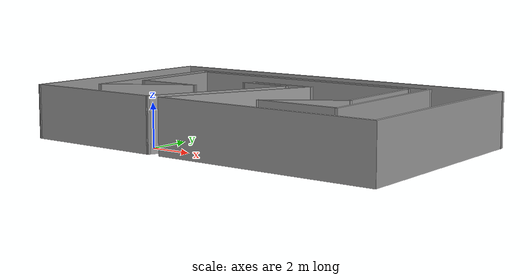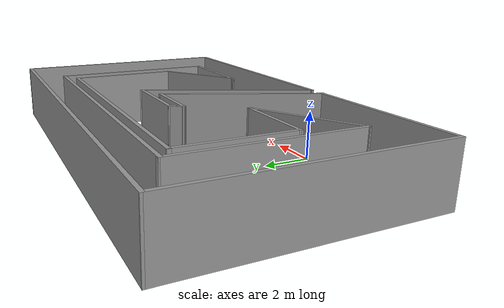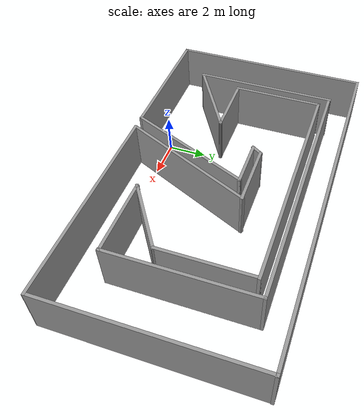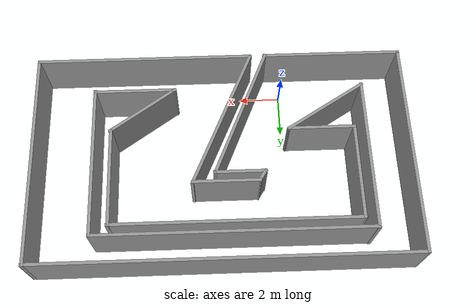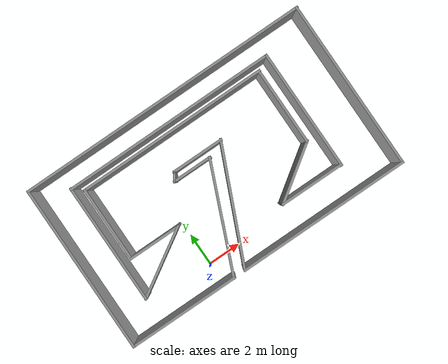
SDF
<?xml version='1.0'?>
<sdf version='1.7'>
  <model name='exam_world'>
    <pose>3.06633 3.94841 0 0 -0 0</pose>
    <link name='Wall_0'>
      <collision name='Wall_0_Collision'>
        <geometry>
          <box>
            <size>10.6064 0.15 2.5</size>
          </box>
        </geometry>
        <pose>0 0 1.25 0 -0 0</pose>
      </collision>
      <visual name='Wall_0_Visual'>
        <pose>0 0 1.25 0 -0 0</pose>
        <geometry>
          <box>
            <size>10.6064 0.15 2.5</size>
          </box>
        </geometry>
        <material>
          <script>
            <uri>file://media/materials/scripts/gazebo.material</uri>
            <name>Gazebo/Grey</name>
          </script>
          <ambient>1 1 1 1</ambient>
        </material>
        <meta>
          <layer>0</layer>
        </meta>
      </visual>
      <pose>3.6836 -5.1238 0 0 -0 0</pose>
    </link>
    <link name='Wall_10'>
      <collision name='Wall_10_Collision'>
        <geometry>
          <box>
            <size>3.25 0.15 2.5</size>
          </box>
        </geometry>
        <pose>0 0 1.25 0 -0 0</pose>
      </collision>
      <visual name='Wall_10_Visual'>
        <pose>0 0 1.25 0 -0 0</pose>
        <geometry>
          <box>
            <size>3.25 0.15 2.5</size>
          </box>
        </geometry>
        <material>
          <script>
            <uri>file://media/materials/scripts/gazebo.material</uri>
            <name>Gazebo/Grey</name>
          </script>
          <ambient>1 1 1 1</ambient>
        </material>
        <meta>
          <layer>0</layer>
        </meta>
      </visual>
      <pose>-0.144455 1.52165 0 0 -0 0</pose>
    </link>
    <link name='Wall_11'>
      <collision name='Wall_11_Collision'>
        <geometry>
          <box>
            <size>7.42086 0.15 2.5</size>
          </box>
        </geometry>
        <pose>0 0 1.25 0 -0 0</pose>
      </collision>
      <visual name='Wall_11_Visual'>
        <pose>0 0 1.25 0 -0 0</pose>
        <geometry>
          <box>
            <size>7.42086 0.15 2.5</size>
          </box>
        </geometry>
        <material>
          <script>
            <uri>file://media/materials/scripts/gazebo.material</uri>
            <name>Gazebo/Grey</name>
          </script>
          <ambient>1 1 1 1</ambient>
        </material>
        <meta>
          <layer>0</layer>
        </meta>
      </visual>
      <pose>-0.06953 -1.77447 0 0 -0 -1.98859</pose>
    </link>
    <link name='Wall_13'>
      <collision name='Wall_13_Collision'>
        <geometry>
          <box>
            <size>4 0.15 2.5</size>
          </box>
        </geometry>
        <pose>0 0 1.25 0 -0 0</pose>
      </collision>
      <visual name='Wall_13_Visual'>
        <pose>0 0 1.25 0 -0 0</pose>
        <geometry>
          <box>
            <size>4 0.15 2.5</size>
          </box>
        </geometry>
        <material>
          <script>
            <uri>file://media/materials/scripts/gazebo.material</uri>
            <name>Gazebo/Grey</name>
          </script>
          <ambient>1 1 1 1</ambient>
        </material>
        <meta>
          <layer>0</layer>
        </meta>
      </visual>
      <pose>4.14434 -3.31958 0 0 -0 0</pose>
    </link>
    <link name='Wall_14'>
      <collision name='Wall_14_Collision'>
        <geometry>
          <box>
            <size>7.3936 0.15 2.5</size>
          </box>
        </geometry>
        <pose>0 0 1.25 0 -0 0</pose>
      </collision>
      <visual name='Wall_14_Visual'>
        <pose>0 0 1.25 0 -0 0</pose>
        <geometry>
          <box>
            <size>7.3936 0.15 2.5</size>
          </box>
        </geometry>
        <material>
          <script>
            <uri>file://media/materials/scripts/gazebo.material</uri>
            <name>Gazebo/Grey</name>
          </script>
          <ambient>1 1 1 1</ambient>
        </material>
        <meta>
          <layer>0</layer>
        </meta>
      </visual>
      <pose>6.06934 0.275617 0 0 -0 1.5708</pose>
    </link>
    <link name='Wall_15'>
      <collision name='Wall_15_Collision'>
        <geometry>
          <box>
            <size>13.1116 0.15 2.5</size>
          </box>
        </geometry>
        <pose>0 0 1.25 0 -0 0</pose>
      </collision>
      <visual name='Wall_15_Visual'>
        <pose>0 0 1.25 0 -0 0</pose>
        <geometry>
          <box>
            <size>13.1116 0.15 2.5</size>
          </box>
        </geometry>
        <material>
          <script>
            <uri>file://media/materials/scripts/gazebo.material</uri>
            <name>Gazebo/Grey</name>
          </script>
          <ambient>1 1 1 1</ambient>
        </material>
        <meta>
          <layer>0</layer>
        </meta>
      </visual>
      <pose>-0.411454 3.92402 0 0 -0 3.14159</pose>
    </link>
    <link name='Wall_16'>
      <collision name='Wall_16_Collision'>
        <geometry>
          <box>
            <size>7.43035 0.15 2.5</size>
          </box>
        </geometry>
        <pose>0 0 1.25 0 -0 0</pose>
      </collision>
      <visual name='Wall_16_Visual'>
        <pose>0 0 1.25 0 -0 0</pose>
        <geometry>
          <box>
            <size>7.43035 0.15 2.5</size>
          </box>
        </geometry>
        <material>
          <script>
            <uri>file://media/materials/scripts/gazebo.material</uri>
            <name>Gazebo/Grey</name>
          </script>
          <ambient>1 1 1 1</ambient>
        </material>
        <meta>
          <layer>0</layer>
        </meta>
      </visual>
      <pose>-6.89743 0.310445 0 0 -0 -1.57222</pose>
    </link>
    <link name='Wall_2'>
      <collision name='Wall_2_Collision'>
        <geometry>
          <box>
            <size>10.3988 0.15 2.5</size>
          </box>
        </geometry>
        <pose>0 0 1.25 0 -0 0</pose>
      </collision>
      <visual name='Wall_2_Visual'>
        <pose>0 0 1.25 0 -0 0</pose>
        <geometry>
          <box>
            <size>10.3988 0.15 2.5</size>
          </box>
        </geometry>
        <material>
          <script>
            <uri>file://media/materials/scripts/gazebo.material</uri>
            <name>Gazebo/Grey</name>
          </script>
          <ambient>1 1 1 1</ambient>
        </material>
        <meta>
          <layer>0</layer>
        </meta>
      </visual>
      <pose>8.9118 0.027198 0 0 -0 1.5708</pose>
    </link>
    <link name='Wall_20'>
      <collision name='Wall_20_Collision'>
        <geometry>
          <box>
            <size>4.46984 0.15 2.5</size>
          </box>
        </geometry>
        <pose>0 0 1.25 0 -0 0</pose>
      </collision>
      <visual name='Wall_20_Visual'>
        <pose>0 0 1.25 0 -0 0</pose>
        <geometry>
          <box>
            <size>4.46984 0.15 2.5</size>
          </box>
        </geometry>
        <material>
          <script>
            <uri>file://media/materials/scripts/gazebo.material</uri>
            <name>Gazebo/Grey</name>
          </script>
          <ambient>1 1 1 1</ambient>
        </material>
        <meta>
          <layer>0</layer>
        </meta>
      </visual>
      <pose>-5.06432 -2.19574 0 0 -0 0.552732</pose>
    </link>
    <link name='Wall_21'>
      <collision name='Wall_21_Collision'>
        <geometry>
          <box>
            <size>3.25 0.15 2.5</size>
          </box>
        </geometry>
        <pose>0 0 1.25 0 -0 0</pose>
      </collision>
      <visual name='Wall_21_Visual'>
        <pose>0 0 1.25 0 -0 0</pose>
        <geometry>
          <box>
            <size>3.25 0.15 2.5</size>
          </box>
        </geometry>
        <material>
          <script>
            <uri>file://media/materials/scripts/gazebo.material</uri>
            <name>Gazebo/Grey</name>
          </script>
          <ambient>1 1 1 1</ambient>
        </material>
        <meta>
          <layer>0</layer>
        </meta>
      </visual>
      <pose>-4.77603 -1.06672 0 0 -0 3.14159</pose>
    </link>
    <link name='Wall_22'>
      <collision name='Wall_22_Collision'>
        <geometry>
          <box>
            <size>4.67346 0.15 2.5</size>
          </box>
        </geometry>
        <pose>0 0 1.25 0 -0 0</pose>
      </collision>
      <visual name='Wall_22_Visual'>
        <pose>0 0 1.25 0 -0 0</pose>
        <geometry>
          <box>
            <size>4.67346 0.15 2.5</size>
          </box>
        </geometry>
        <material>
          <script>
            <uri>file://media/materials/scripts/gazebo.material</uri>
            <name>Gazebo/Grey</name>
          </script>
          <ambient>1 1 1 1</ambient>
        </material>
        <meta>
          <layer>0</layer>
        </meta>
      </visual>
      <pose>-6.31824 1.195 0 0 -0 1.56735</pose>
    </link>
    <link name='Wall_23'>
      <collision name='Wall_23_Collision'>
        <geometry>
          <box>
            <size>11.7608 0.15 2.5</size>
          </box>
        </geometry>
        <pose>0 0 1.25 0 -0 0</pose>
      </collision>
      <visual name='Wall_23_Visual'>
        <pose>0 0 1.25 0 -0 0</pose>
        <geometry>
          <box>
            <size>11.7608 0.15 2.5</size>
          </box>
        </geometry>
        <material>
          <script>
            <uri>file://media/materials/scripts/gazebo.material</uri>
            <name>Gazebo/Grey</name>
          </script>
          <ambient>1 1 1 1</ambient>
        </material>
        <meta>
          <layer>0</layer>
        </meta>
      </visual>
      <pose>-0.531654 3.45671 0 0 -0 0</pose>
    </link>
    <link name='Wall_24'>
      <collision name='Wall_24_Collision'>
        <geometry>
          <box>
            <size>4.8086 0.15 2.5</size>
          </box>
        </geometry>
        <pose>0 0 1.25 0 -0 0</pose>
      </collision>
      <visual name='Wall_24_Visual'>
        <pose>0 0 1.25 0 -0 0</pose>
        <geometry>
          <box>
            <size>4.8086 0.15 2.5</size>
          </box>
        </geometry>
        <material>
          <script>
            <uri>file://media/materials/scripts/gazebo.material</uri>
            <name>Gazebo/Grey</name>
          </script>
          <ambient>1 1 1 1</ambient>
        </material>
        <meta>
          <layer>0</layer>
        </meta>
      </visual>
      <pose>5.24715 1.12741 0 0 -0 -1.5708</pose>
    </link>
    <link name='Wall_25'>
      <collision name='Wall_25_Collision'>
        <geometry>
          <box>
            <size>3.86672 0.15 2.5</size>
          </box>
        </geometry>
        <pose>0 0 1.25 0 -0 0</pose>
      </collision>
      <visual name='Wall_25_Visual'>
        <pose>0 0 1.25 0 -0 0</pose>
        <geometry>
          <box>
            <size>3.86672 0.15 2.5</size>
          </box>
        </geometry>
        <material>
          <script>
            <uri>file://media/materials/scripts/gazebo.material</uri>
            <name>Gazebo/Grey</name>
          </script>
          <ambient>1 1 1 1</ambient>
        </material>
        <meta>
          <layer>0</layer>
        </meta>
      </visual>
      <pose>3.74655 -2.26074 0 0 -0 -2.53536</pose>
    </link>
    <link name='Wall_3'>
      <collision name='Wall_3_Collision'>
        <geometry>
          <box>
            <size>18 0.15 2.5</size>
          </box>
        </geometry>
        <pose>0 0 1.25 0 -0 0</pose>
      </collision>
      <visual name='Wall_3_Visual'>
        <pose>0 0 1.25 0 -0 0</pose>
        <geometry>
          <box>
            <size>18 0.15 2.5</size>
          </box>
        </geometry>
        <material>
          <script>
            <uri>file://media/materials/scripts/gazebo.material</uri>
            <name>Gazebo/Grey</name>
          </script>
          <ambient>1 1 1 1</ambient>
        </material>
        <meta>
          <layer>0</layer>
        </meta>
      </visual>
      <pose>0.013397 5.1516 0 0 -0 3.14159</pose>
    </link>
    <link name='Wall_5'>
      <collision name='Wall_5_Collision'>
        <geometry>
          <box>
            <size>10.4254 0.15 2.5</size>
          </box>
        </geometry>
        <pose>0 0 1.25 0 -0 0</pose>
      </collision>
      <visual name='Wall_5_Visual'>
        <pose>0 0 1.25 0 -0 0</pose>
        <geometry>
          <box>
            <size>10.4254 0.15 2.5</size>
          </box>
        </geometry>
        <material>
          <script>
            <uri>file://media/materials/scripts/gazebo.material</uri>
            <name>Gazebo/Grey</name>
          </script>
          <ambient>1 1 1 1</ambient>
        </material>
        <meta>
          <layer>0</layer>
        </meta>
      </visual>
      <pose>-8.9249 0.013898 0 0 -0 -1.57339</pose>
    </link>
    <link name='Wall_6'>
      <collision name='Wall_6_Collision'>
        <geometry>
          <box>
            <size>6.79632 0.15 2.5</size>
          </box>
        </geometry>
        <pose>0 0 1.25 0 -0 0</pose>
      </collision>
      <visual name='Wall_6_Visual'>
        <pose>0 0 1.25 0 -0 0</pose>
        <geometry>
          <box>
            <size>6.79632 0.15 2.5</size>
          </box>
        </geometry>
        <material>
          <script>
            <uri>file://media/materials/scripts/gazebo.material</uri>
            <name>Gazebo/Grey</name>
          </script>
          <ambient>1 1 1 1</ambient>
        </material>
        <meta>
          <layer>0</layer>
        </meta>
      </visual>
      <pose>-5.58844 -5.1261 0 0 -0 -0.000692</pose>
    </link>
    <link name='Wall_7'>
      <collision name='Wall_7_Collision'>
        <geometry>
          <box>
            <size>6.89169 0.15 2.5</size>
          </box>
        </geometry>
        <pose>0 0 1.25 0 -0 0</pose>
      </collision>
      <visual name='Wall_7_Visual'>
        <pose>0 0 1.25 0 -0 0</pose>
        <geometry>
          <box>
            <size>6.89169 0.15 2.5</size>
          </box>
        </geometry>
        <material>
          <script>
            <uri>file://media/materials/scripts/gazebo.material</uri>
            <name>Gazebo/Grey</name>
          </script>
          <ambient>1 1 1 1</ambient>
        </material>
        <meta>
          <layer>0</layer>
        </meta>
      </visual>
      <pose>-0.972282 -2.02658 0 0 -0 1.16856</pose>
    </link>
    <link name='Wall_8'>
      <collision name='Wall_8_Collision'>
        <geometry>
          <box>
            <size>2.5 0.15 2.5</size>
          </box>
        </geometry>
        <pose>0 0 1.25 0 -0 0</pose>
      </collision>
      <visual name='Wall_8_Visual'>
        <pose>0 0 1.25 0 -0 0</pose>
        <geometry>
          <box>
            <size>2.5 0.15 2.5</size>
          </box>
        </geometry>
        <material>
          <script>
            <uri>file://media/materials/scripts/gazebo.material</uri>
            <name>Gazebo/Grey</name>
          </script>
          <ambient>1 1 1 1</ambient>
        </material>
        <meta>
          <layer>0</layer>
        </meta>
      </visual>
      <pose>-0.80455 1.07523 0 0 -0 3.14159</pose>
    </link>
    <link name='Wall_9'>
      <collision name='Wall_9_Collision'>
        <geometry>
          <box>
            <size>0.679689 0.15 2.5</size>
          </box>
        </geometry>
        <pose>0 0 1.25 0 -0 0</pose>
      </collision>
      <visual name='Wall_9_Visual'>
        <pose>0 0 1.25 0 -0 0</pose>
        <geometry>
          <box>
            <size>0.679689 0.15 2.5</size>
          </box>
        </geometry>
        <material>
          <script>
            <uri>file://media/materials/scripts/gazebo.material</uri>
            <name>Gazebo/Grey</name>
          </script>
          <ambient>1 1 1 1</ambient>
        </material>
        <meta>
          <layer>0</layer>
        </meta>
      </visual>
      <pose>-1.837 1.29844 0 0 -0 1.00246</pose>
    </link>
    <static>1</static>
  </model>
</sdf>
